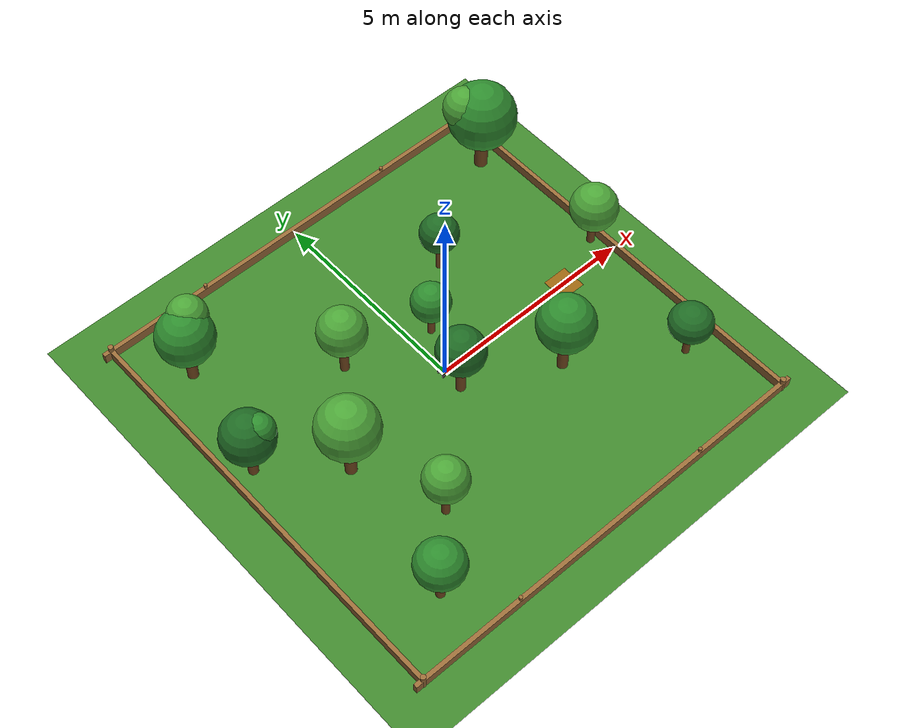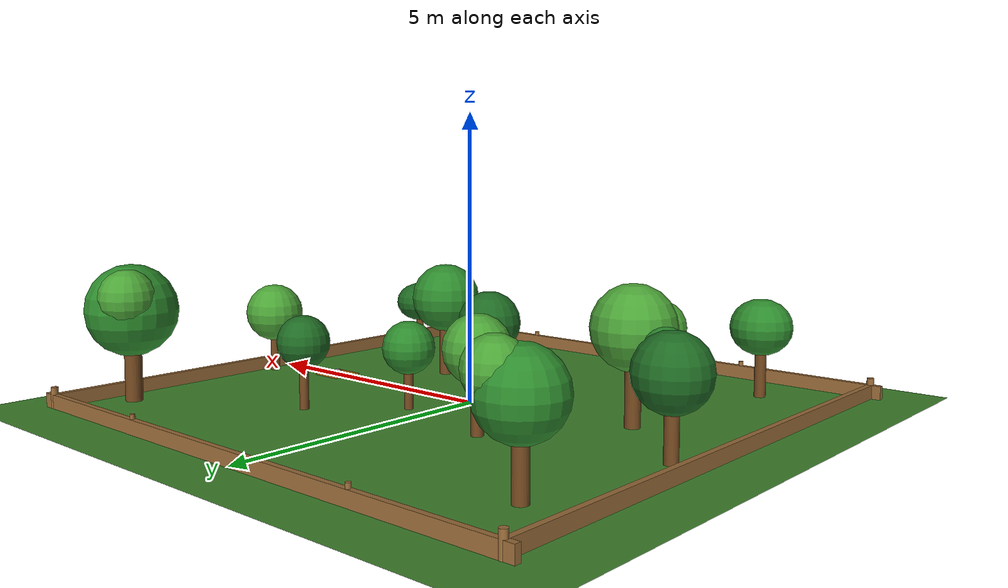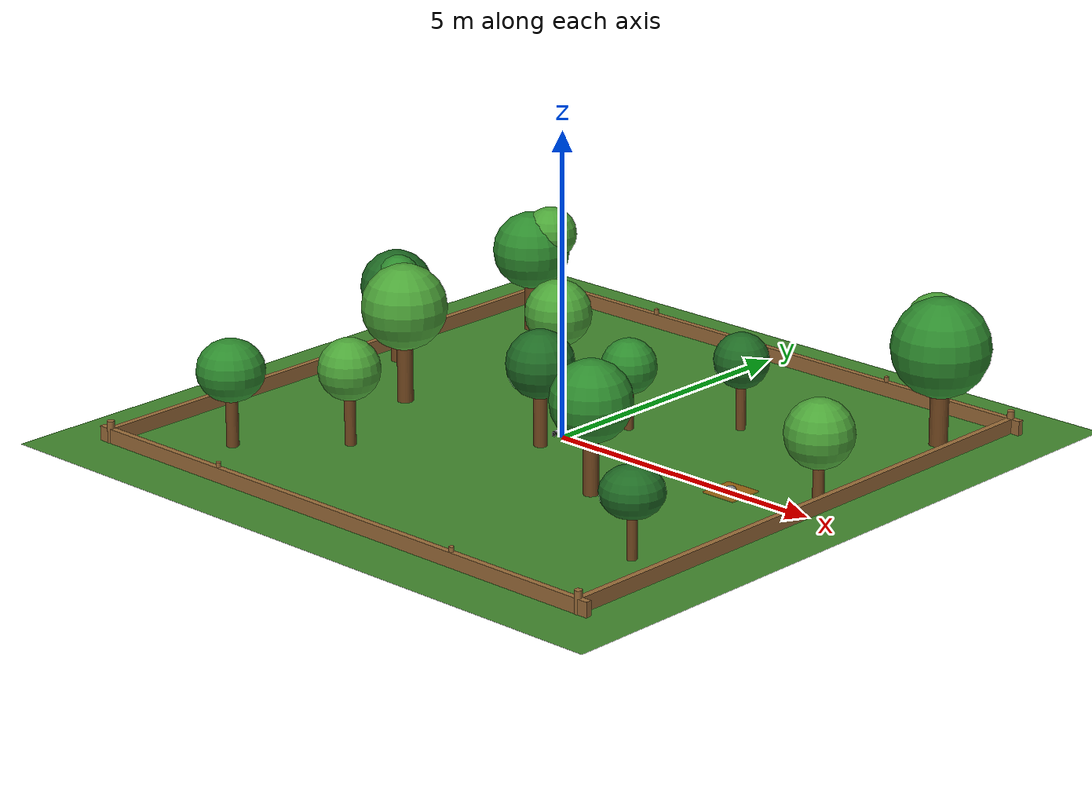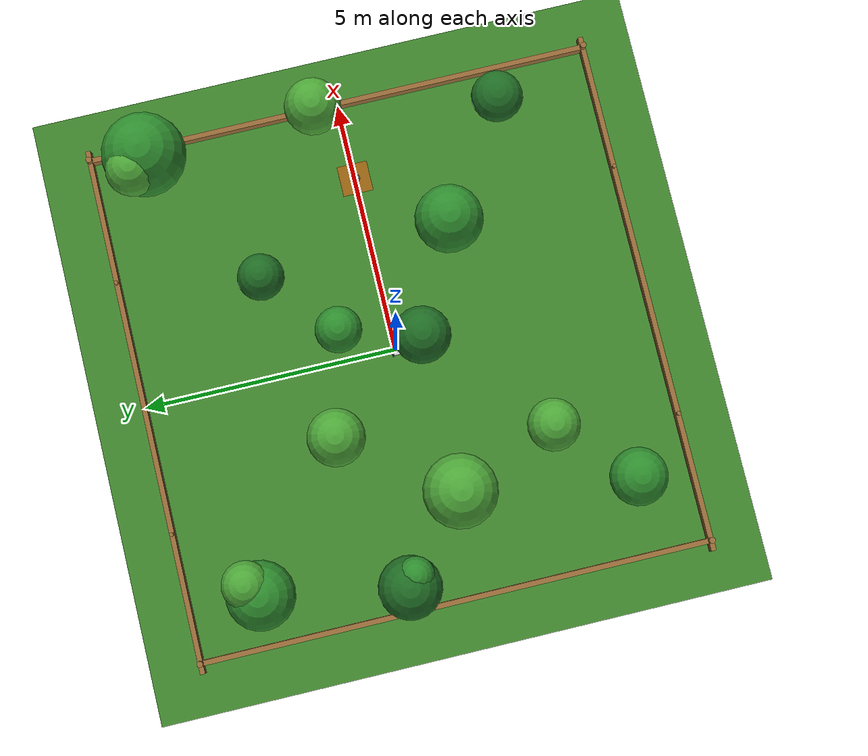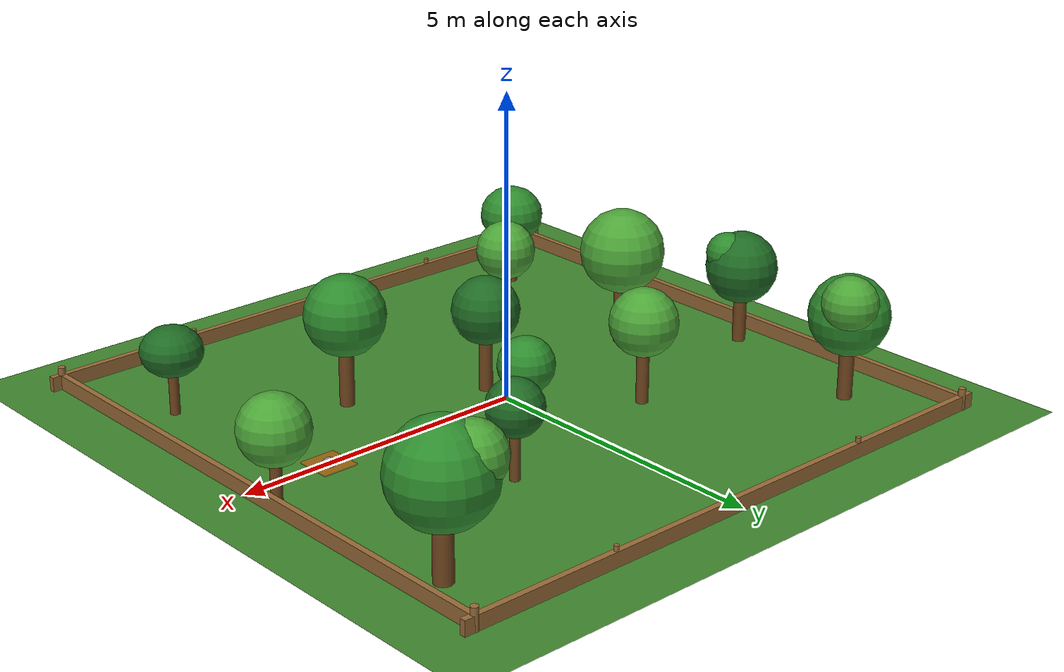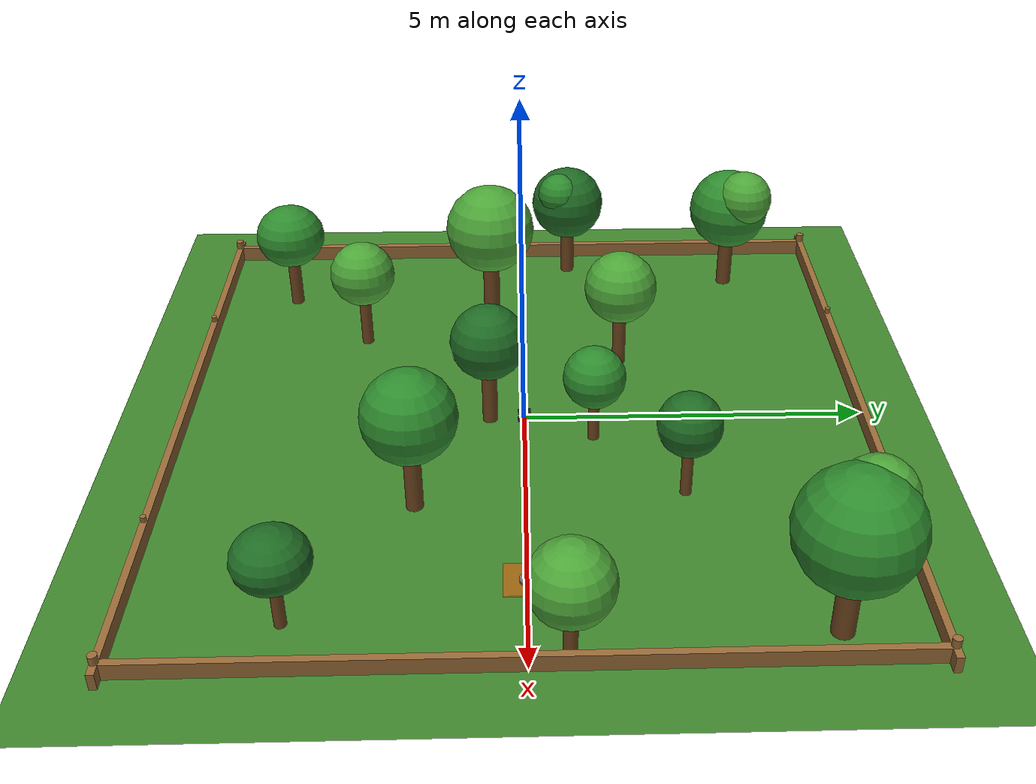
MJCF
<mujoco model="farm_field">
    <option gravity="0 0 -9.81" timestep="0.001" integrator="implicitfast"/>

    <default>
        <geom condim="3" friction="1 0.005 0.0001" solref="0.01 1" solimp=".9 .95 .001"/>
        <joint damping="0.1"/>
    </default>

    <!-- ======================== ASSETS ======================== -->
    <asset>
        <!-- Ground textures -->
        <texture name="grass_tex" type="2d" builtin="checker"
                 rgb1="0.22 0.50 0.15" rgb2="0.28 0.55 0.20"
                 width="512" height="512"/>
        <material name="grass_mat" texture="grass_tex"
                  texrepeat="12 12" texuniform="true"
                  reflectance="0.05"/>

        <texture name="dirt_tex" type="2d" builtin="flat"
                 rgb1="0.55 0.38 0.22" rgb2="0.50 0.35 0.20"
                 width="64" height="64"/>
        <material name="dirt_mat" texture="dirt_tex" reflectance="0.02"/>

        <!-- Foliage colours -->
        <material name="trunk_mat"  rgba="0.45 0.28 0.12 1" reflectance="0.05"/>
        <material name="canopy_mat" rgba="0.18 0.55 0.18 1" reflectance="0.1"/>
        <material name="canopy_light_mat" rgba="0.30 0.65 0.22 1" reflectance="0.1"/>
        <material name="canopy_dark_mat"  rgba="0.12 0.42 0.14 1" reflectance="0.1"/>

        <!-- Crop colours -->
        <material name="crop_mat"   rgba="0.35 0.62 0.18 1" reflectance="0.05"/>
        <material name="crop_ripe_mat" rgba="0.80 0.72 0.15 1" reflectance="0.05"/>

        <!-- Bush / flower colours -->
        <material name="bush_mat"   rgba="0.20 0.50 0.15 1" reflectance="0.08"/>
        <material name="flower_red_mat"    rgba="0.85 0.15 0.15 1" reflectance="0.1"/>
        <material name="flower_yellow_mat" rgba="0.95 0.85 0.15 1" reflectance="0.1"/>
        <material name="flower_purple_mat" rgba="0.60 0.20 0.75 1" reflectance="0.1"/>
        <material name="flower_white_mat"  rgba="0.95 0.92 0.90 1" reflectance="0.1"/>

        <!-- Fence -->
        <material name="fence_mat" rgba="0.60 0.42 0.22 1" reflectance="0.05"/>

        <!-- Tractor colours -->
        <material name="chassis_mat" rgba="0.80 0.80 0.82 1" reflectance="0.3"/>
        <material name="wheel_mat"   rgba="0.12 0.12 0.12 1" reflectance="0.05"/>
        <material name="track_mat"   rgba="0.06 0.06 0.06 1" reflectance="0.02"/>
        <material name="motor_mat"   rgba="0.25 0.25 0.28 1" reflectance="0.15"/>

        <!-- Sky -->
        <texture name="sky_tex" type="skybox" builtin="gradient"
                 rgb1="0.40 0.65 0.95" rgb2="0.85 0.92 1.0"
                 width="512" height="512"/>
    </asset>

    <!-- ======================== WORLDBODY ======================== -->
    <worldbody>
        <!-- Warm sun-like directional light -->
        <light name="sun" directional="true" diffuse="1.0 0.95 0.8" specular="0.3 0.3 0.3"
               pos="5 -3 8" dir="-0.3 0.2 -1" castshadow="true"/>
        <light name="fill" directional="true" diffuse="0.3 0.35 0.45" specular="0.05 0.05 0.05"
               pos="-4 4 6" dir="0.3 -0.3 -1" castshadow="false"/>

        <!-- ===== GROUND ===== -->
        <geom name="grass_floor" type="plane" size="6 6 0.1" material="grass_mat"/>

        <!-- Dirt paths between crop rows -->
        <!-- Dirt paths removed for a clean grass field -->

        <!-- ===== TARGET (end of field) ===== -->
        <body name="target" pos="3.5 0 0.01">
            <geom name="target_geom" type="box" size=".3 .3 .01" rgba="1 0.3 0 0.5"
                  contype="0" conaffinity="0"/>
            <site name="target_site" pos="0 0 0" size="0.1"/>
        </body>

        <!--                         TREES                              -->

        <!-- Tree 1 — tall oak, back-left -->
        <body name="tree1" pos="-4.0 3.5 0">
            <geom name="trunk1" type="cylinder" size="0.12 0.55" pos="0 0 0.55"
                  material="trunk_mat" contype="1" conaffinity="1"/>
            <geom name="canopy1" type="sphere" size="0.65" pos="0 0 1.4"
                  material="canopy_mat" contype="0" conaffinity="0"/>
            <geom name="canopy1b" type="sphere" size="0.45" pos="0.25 0.2 1.7"
                  material="canopy_light_mat" contype="0" conaffinity="0"/>
        </body>

        <!-- Tree 2 — smaller tree, front-right -->
        <body name="tree2" pos="4.2 -3.0 0">
            <geom name="trunk2" type="cylinder" size="0.08 0.40" pos="0 0 0.40"
                  material="trunk_mat" contype="1" conaffinity="1"/>
            <geom name="canopy2" type="ellipsoid" size="0.50 0.50 0.40" pos="0 0 1.05"
                  material="canopy_dark_mat" contype="0" conaffinity="0"/>
        </body>

        <!-- Tree 3 — big tree, back-right corner -->
        <body name="tree3" pos="4.5 3.8 0">
            <geom name="trunk3" type="cylinder" size="0.15 0.65" pos="0 0 0.65"
                  material="trunk_mat" contype="1" conaffinity="1"/>
            <geom name="canopy3" type="sphere" size="0.80" pos="0 0 1.60"
                  material="canopy_mat" contype="0" conaffinity="0"/>
            <geom name="canopy3b" type="sphere" size="0.50" pos="-0.3 0.25 1.85"
                  material="canopy_light_mat" contype="0" conaffinity="0"/>
        </body>

        <!-- Tree 4 — medium tree, front-left -->
        <body name="tree4" pos="-3.5 -3.8 0">
            <geom name="trunk4" type="cylinder" size="0.10 0.50" pos="0 0 0.50"
                  material="trunk_mat" contype="1" conaffinity="1"/>
            <geom name="canopy4" type="ellipsoid" size="0.55 0.55 0.50" pos="0 0 1.25"
                  material="canopy_mat" contype="0" conaffinity="0"/>
        </body>

        <!-- Tree 5 — near center-right edge -->
        <body name="tree5" pos="4.8 0.5 0">
            <geom name="trunk5" type="cylinder" size="0.09 0.45" pos="0 0 0.45"
                  material="trunk_mat" contype="1" conaffinity="1"/>
            <geom name="canopy5" type="sphere" size="0.55" pos="0 0 1.15"
                  material="canopy_light_mat" contype="0" conaffinity="0"/>
        </body>

        <!-- Tree 6 — left side -->
        <body name="tree6" pos="-4.5 0.8 0">
            <geom name="trunk6" type="cylinder" size="0.11 0.50" pos="0 0 0.50"
                  material="trunk_mat" contype="1" conaffinity="1"/>
            <geom name="canopy6" type="sphere" size="0.60" pos="0 0 1.30"
                  material="canopy_dark_mat" contype="0" conaffinity="0"/>
            <geom name="canopy6b" type="sphere" size="0.35" pos="0.2 -0.15 1.55"
                  material="canopy_mat" contype="0" conaffinity="0"/>
        </body>

        <!-- New Trees added to the middle for PPO to avoid -->
        <body name="tree7" pos="-1.5 1.5 0">
            <geom name="trunk7" type="cylinder" size="0.10 0.55" pos="0 0 0.55" material="trunk_mat" contype="1" conaffinity="1"/>
            <geom name="canopy7" type="sphere" size="0.55" pos="0 0 1.35" material="canopy_light_mat" contype="0" conaffinity="0"/>
        </body>
        <body name="tree8" pos="1.8 2.2 0">
            <geom name="trunk8" type="cylinder" size="0.08 0.45" pos="0 0 0.45" material="trunk_mat" contype="1" conaffinity="1"/>
            <geom name="canopy8" type="sphere" size="0.45" pos="0 0 1.15" material="canopy_dark_mat" contype="0" conaffinity="0"/>
        </body>
        <body name="tree9" pos="2.0 -1.5 0">
            <geom name="trunk9" type="cylinder" size="0.12 0.60" pos="0 0 0.60" material="trunk_mat" contype="1" conaffinity="1"/>
            <geom name="canopy9" type="sphere" size="0.65" pos="0 0 1.50" material="canopy_mat" contype="0" conaffinity="0"/>
        </body>
        <body name="tree10" pos="-2.2 -2.5 0">
            <geom name="trunk10" type="cylinder" size="0.09 0.50" pos="0 0 0.50" material="trunk_mat" contype="1" conaffinity="1"/>
            <geom name="canopy10" type="sphere" size="0.50" pos="0 0 1.25" material="canopy_light_mat" contype="0" conaffinity="0"/>
        </body>
        <body name="tree11" pos="0 -0.5 0">
            <geom name="trunk11" type="cylinder" size="0.11 0.55" pos="0 0 0.55" material="trunk_mat" contype="1" conaffinity="1"/>
            <geom name="canopy11" type="sphere" size="0.55" pos="0 0 1.35" material="canopy_dark_mat" contype="0" conaffinity="0"/>
        </body>
        <body name="tree12" pos="0.5 1.0 0">
            <geom name="trunk12" type="cylinder" size="0.08 0.40" pos="0 0 0.40" material="trunk_mat" contype="1" conaffinity="1"/>
            <geom name="canopy12" type="sphere" size="0.45" pos="0 0 1.05" material="canopy_mat" contype="0" conaffinity="0"/>
        </body>
        <body name="tree13" pos="-3.0 -0.5 0">
            <geom name="trunk13" type="cylinder" size="0.13 0.65" pos="0 0 0.65" material="trunk_mat" contype="1" conaffinity="1"/>
            <geom name="canopy13" type="sphere" size="0.70" pos="0 0 1.60" material="canopy_light_mat" contype="0" conaffinity="0"/>
        </body>

        <!--                      CROP ROWS                             -->

        <!-- Trees and Fences are kept as obstacles -->

        <!--                    WOODEN FENCE                            -->

        <!-- North fence -->
        <geom name="fence_n" type="box" pos="0 5.0 0.12" size="5.2 0.05 0.12" material="fence_mat"/>
        <!-- South fence -->
        <geom name="fence_s" type="box" pos="0 -5.0 0.12" size="5.2 0.05 0.12" material="fence_mat"/>
        <!-- East fence -->
        <geom name="fence_e" type="box" pos="5.0 0 0.12" size="0.05 5.0 0.12" material="fence_mat"/>
        <!-- West fence -->
        <geom name="fence_w" type="box" pos="-5.0 0 0.12" size="0.05 5.0 0.12" material="fence_mat"/>

        <!-- Fence posts (vertical pillars at corners and intervals) -->
        <geom name="fp_ne" type="cylinder" size="0.06 0.18" pos="5.0 5.0 0.18" material="fence_mat"/>
        <geom name="fp_nw" type="cylinder" size="0.06 0.18" pos="-5.0 5.0 0.18" material="fence_mat"/>
        <geom name="fp_se" type="cylinder" size="0.06 0.18" pos="5.0 -5.0 0.18" material="fence_mat"/>
        <geom name="fp_sw" type="cylinder" size="0.06 0.18" pos="-5.0 -5.0 0.18" material="fence_mat"/>
        <geom name="fp_n1" type="cylinder" size="0.04 0.16" pos="2.5 5.0 0.16" material="fence_mat"/>
        <geom name="fp_n2" type="cylinder" size="0.04 0.16" pos="-2.5 5.0 0.16" material="fence_mat"/>
        <geom name="fp_s1" type="cylinder" size="0.04 0.16" pos="2.5 -5.0 0.16" material="fence_mat"/>
        <geom name="fp_s2" type="cylinder" size="0.04 0.16" pos="-2.5 -5.0 0.16" material="fence_mat"/>

        <!--              TANK TRACTOR (scaled up ~10×)                 -->
        <body name="tractor" pos="0 0 0.08">
            <joint type="free"/>

            <!-- Chassis platform -->
            <geom name="chassis" type="box" size="0.12 0.06 0.01"
                  material="chassis_mat" mass="5.0"/>
            <site name="marker" pos="0.12 0 0" size="0.02"/>

            <!-- Ray sites for rangefinders -->
            <!-- Facing Forward, Left, Right, Forward-Left, Forward-Right -->
            <!-- Max range ~ 3m looks good for this small environment -->
            <site name="ray_f" pos="0.12 0 0" size="0.01" type="sphere" rgba="1 0 0 1" euler="0 90 0"/>
            <site name="ray_fl" pos="0.12 0.05 0" size="0.01" type="sphere" rgba="1 0 0 1" euler="0 90 30"/>
            <site name="ray_fr" pos="0.12 -0.05 0" size="0.01" type="sphere" rgba="1 0 0 1" euler="0 90 -30"/>
            <site name="ray_l" pos="0 0.06 0" size="0.01" type="sphere" rgba="1 0 0 1" euler="0 90 90"/>
            <site name="ray_r" pos="0 -0.06 0" size="0.01" type="sphere" rgba="1 0 0 1" euler="0 90 -90"/>

            <!-- ---- Left side ---- -->
            <!-- Front-left drive wheel -->
            <body name="fl_wheel" pos="0.10 0.08 -0.03" euler="90 0 0">
                <joint name="fl-wheel" type="hinge" axis="0 0 -1" damping="0.05" armature="0.1"/>
                <geom name="fl_wheel_geom" type="cylinder" size="0.04 0.015"
                      material="wheel_mat" mass="1.0"/>
            </body>
            <!-- Rear-left drive wheel -->
            <body name="rl_wheel" pos="-0.10 0.08 -0.03" euler="90 0 0">
                <joint name="rl-wheel" type="hinge" axis="0 0 -1" damping="0.05" armature="0.1"/>
                <geom name="rl_wheel_geom" type="cylinder" size="0.04 0.015"
                      material="wheel_mat" mass="1.0"/>
            </body>

            <!-- ---- Right side ---- -->
            <!-- Front-right drive wheel -->
            <body name="fr_wheel" pos="0.10 -0.08 -0.03" euler="90 0 0">
                <joint name="fr-wheel" type="hinge" axis="0 0 -1" damping="0.05" armature="0.1"/>
                <geom name="fr_wheel_geom" type="cylinder" size="0.04 0.015"
                      material="wheel_mat" mass="1.0"/>
            </body>
            <!-- Rear-right drive wheel -->
            <body name="rr_wheel" pos="-0.10 -0.08 -0.03" euler="90 0 0">
                <joint name="rr-wheel" type="hinge" axis="0 0 -1" damping="0.05" armature="0.1"/>
                <geom name="rr_wheel_geom" type="cylinder" size="0.04 0.015"
                      material="wheel_mat" mass="1.0"/>
            </body>
        </body>
    </worldbody>

    <!-- ======================== SENSORS ======================== -->
    <sensor>
        <framepos objtype="site" objname="marker"/>
        <framepos objtype="site" objname="target_site"/>
        <!-- Rangefinders for PPO observation -->
        <rangefinder name="rf_f" site="ray_f" cutoff="3.0"/>
        <rangefinder name="rf_fl" site="ray_fl" cutoff="3.0"/>
        <rangefinder name="rf_fr" site="ray_fr" cutoff="3.0"/>
        <rangefinder name="rf_l" site="ray_l" cutoff="3.0"/>
        <rangefinder name="rf_r" site="ray_r" cutoff="3.0"/>
    </sensor>

    <!-- ======================== ACTUATORS ======================== -->
    <actuator>
        <velocity name="fl-velocity" joint="fl-wheel" kv="5"/>
        <velocity name="rl-velocity" joint="rl-wheel" kv="5"/>
        <velocity name="fr-velocity" joint="fr-wheel" kv="5"/>
        <velocity name="rr-velocity" joint="rr-wheel" kv="5"/>
    </actuator>
</mujoco>
